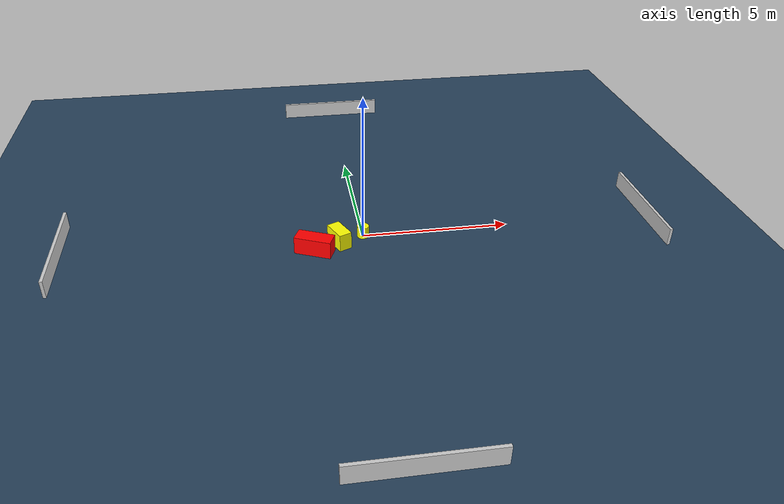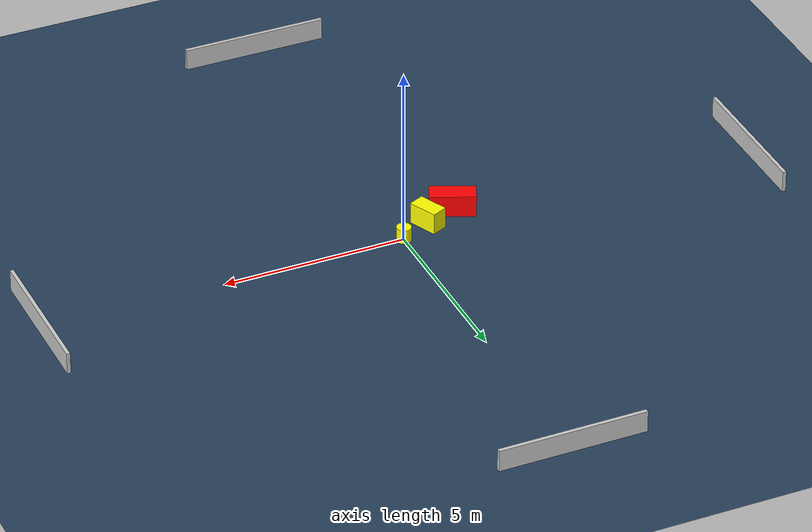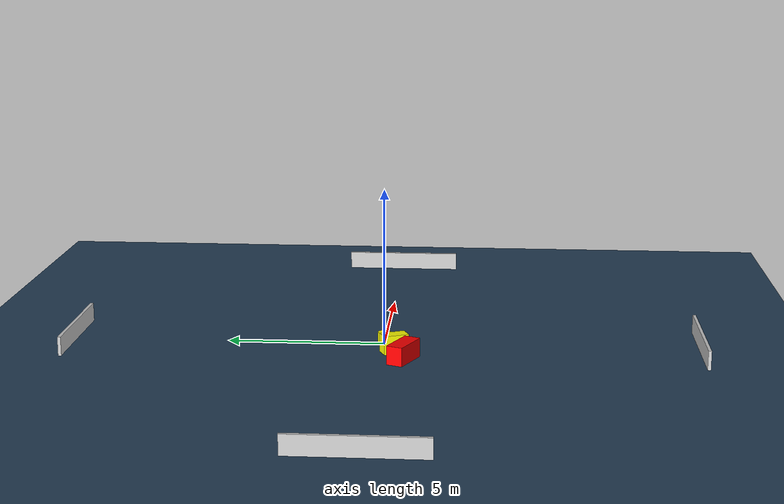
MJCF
<?xml version="1.0" ?>
<mujoco model="generated_environment">
  <option timestep="0.01" integrator="RK4" cone="elliptic"/>
  <default>
    <geom density="1"/>
  </default>
  <asset>
    <texture builtin="gradient" height="3072" name="skybox" rgb1="0.3 0.5 0.7" rgb2="0 0 0" type="skybox" width="512"/>
    <texture builtin="checker" height="300" name="groundplane" rgb1="0.2 0.3 0.4" rgb2="0.1 0.2 0.3" type="2d" width="300"/>
    <material name="groundplane" reflectance="0.2" texrepeat="5 5" texture="groundplane"/>
  </asset>
  <worldbody>
    <light dir="0 0 -1" directional="true" pos="0 0 1.5"/>
    <geom condim="3" friction="0.5 0.005 0.001" material="groundplane" name="floor" pos="0 0 0" size="0 0 0.05" type="plane"/>
    <body name="walls">
      <geom name="wall_1" condim="4" pos="-10.0 0.0 0.3" rgba="0.800000011920929 0.800000011920929 0.800000011920929 1.0" size="0.05 2.0 0.3" type="box"/>
      <geom name="wall_2" condim="4" pos="10.0 0.0 0.3" rgba="0.800000011920929 0.800000011920929 0.800000011920929 1.0" size="0.05 2.0 0.3" type="box"/>
      <geom name="wall_3" condim="4" pos="0.0 -10.0 0.3" rgba="0.800000011920929 0.800000011920929 0.800000011920929 1.0" size="2.0 0.05 0.3" type="box"/>
      <geom name="wall_4" condim="4" pos="0.0 10.0 0.3" rgba="0.800000011920929 0.800000011920929 0.800000011920929 1.0" size="2.0 0.05 0.3" type="box"/>
    </body>
    <body name="robot">
      <joint name="joint_x" type="slide" pos="0 0 0" axis="1 0 0"/>
      <joint name="joint_y" type="slide" pos="0 0 0" axis="0 1 0"/>
      <geom name="robot" type="cylinder" pos="0.0 0.0 0.2" size="0.2 0.2 0.0" mass="5.0" friction="1.0 0.005 0.0001" condim="4" rgba="1.0 1.0 0.0 1.0"/>
    </body>
    <body name="obstacle_1_movable">
      <geom name="obstacle_1_movable" condim="4" pos="-0.8472670631262386 -0.37499800566322034 0.3" euler="0 0 204.34061099728297" friction="0.0 0.005 0.001" rgba="1.0 1.0 0.0 1.0" size="0.2218695181509975 0.4078623643394145 0.3" type="box" mass="0.1"/>
      <joint type="free"/>
    </body>
    <body name="obstacle_2_static">
      <geom name="obstacle_2_static" condim="4" pos="-1.7030991911845963 -0.7123655735246555 0.3" euler="0 0 246.116820264506" friction="0.0 0.005 0.001" rgba="1.0 0.0 0.0 1.0" size="0.26484012052478684 0.6195423876378092 0.3" type="box"/>
    </body>
  </worldbody>
  <actuator>
    <motor name="actuator_x" joint="joint_x" gear="1" ctrlrange="-1 1"/>
    <motor name="actuator_y" joint="joint_y" gear="1" ctrlrange="-1 1"/>
  </actuator>
</mujoco>
